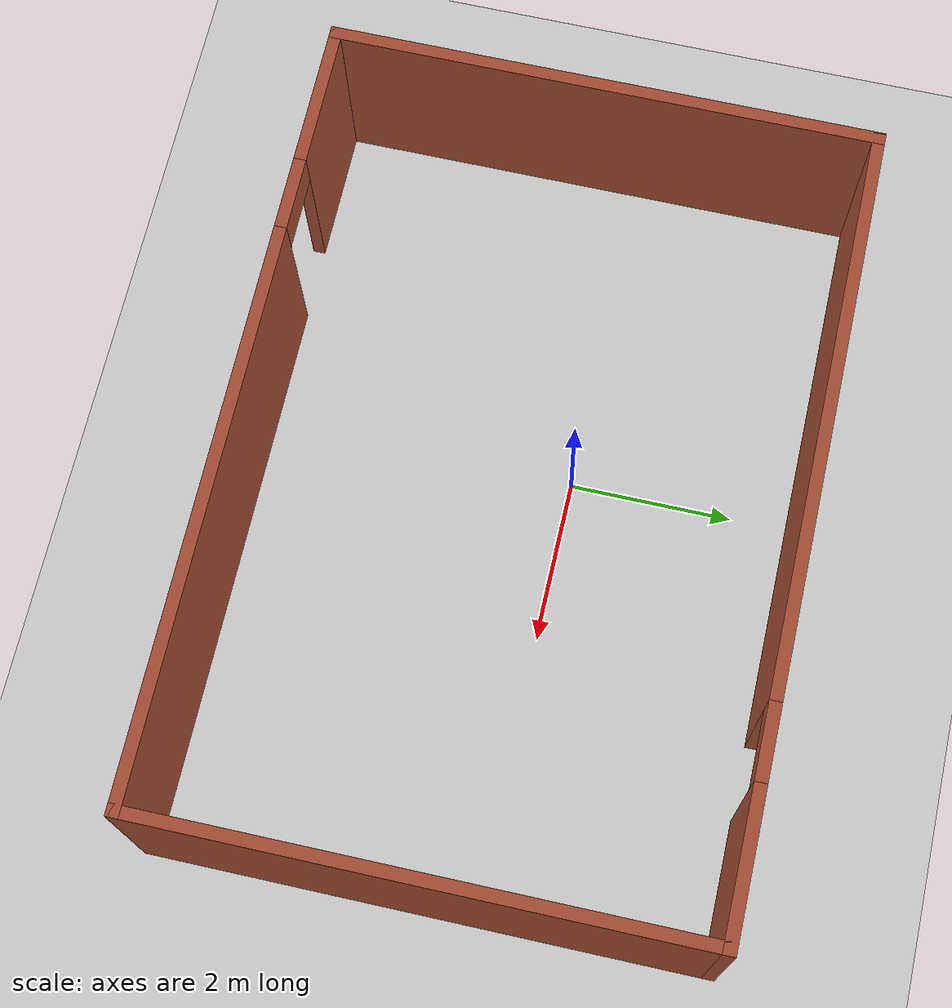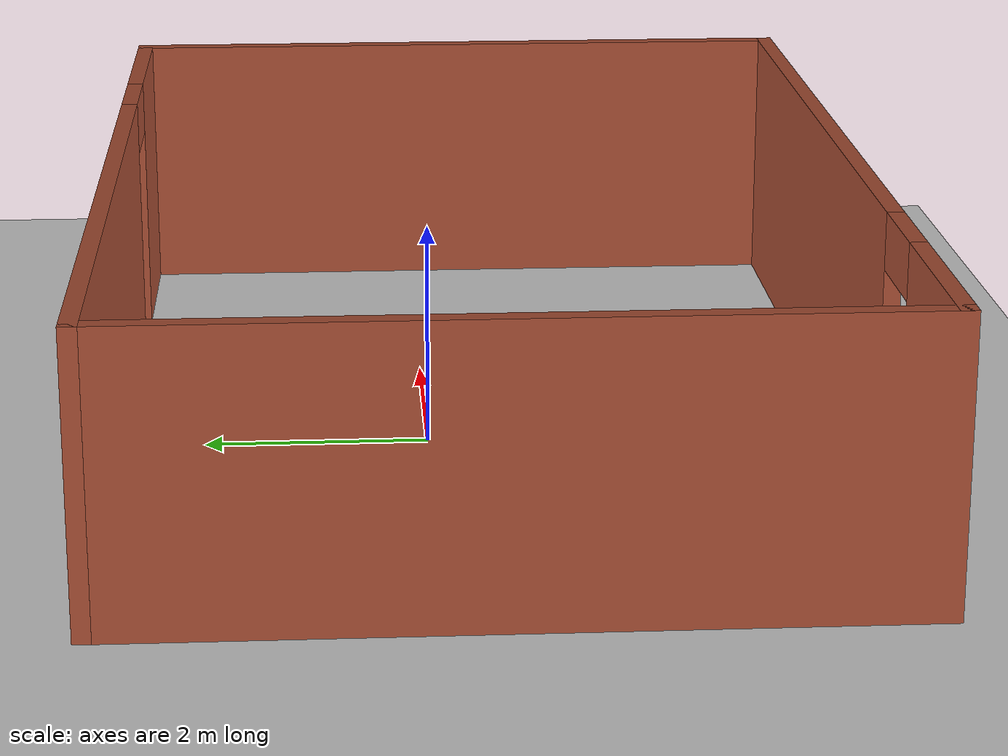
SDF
<sdf version="1.7">
 <world name="default">
  <light name="sun" type="directional">
   <pose>0 0 10 0 -0 0</pose>
   <diffuse>0.8 0.8 0.8 1</diffuse>
   <specular>0.2 0.2 0.2 1</specular>
   <attenuation>
    <range>1000</range>
    <constant>0.9</constant>
    <linear>0.01</linear>
    <quadratic>0.001</quadratic>
   </attenuation>
   <direction>-0.5 0.1 -0.9</direction>
   <spot><inner_angle>0</inner_angle><outer_angle>0</outer_angle><falloff>0</falloff></spot>
  </light>
  <model name="ground_plane">
   <static>1</static>
   <link name="link">
    <collision name="collision">
     <geometry><plane><normal>0 0 1</normal><size>100 100</size></plane></geometry>
     <surface>
      <contact><collide_bitmask>65535</collide_bitmask></contact>
      <friction><ode><mu>100</mu><mu2>50</mu2></ode></friction>
     </surface>
    </collision>
    <visual name="visual">
     <cast_shadows>0</cast_shadows>
     <geometry><plane><normal>0 0 1</normal><size>100 100</size></plane></geometry>
     <material>
      <script><uri>file://media/materials/scripts/gazebo.material</uri><name>Gazebo/Grey</name></script>
     </material>
    </visual>
   </link>
  </model>
  <gravity>0 0 -9.8</gravity>
  <magnetic_field>6e-06 2.3e-05 -4.2e-05</magnetic_field>
  <atmosphere type="adiabatic"/>
  <physics type="ode">
   <max_step_size>0.001</max_step_size>
   <real_time_factor>1</real_time_factor>
   <real_time_update_rate>1000</real_time_update_rate>
  </physics>
  <scene><ambient>0.4 0.4 0.4 1</ambient><background>0.7 0.7 0.7 1</background><shadows>1</shadows></scene>
  <audio><device>default</device></audio>
  <spherical_coordinates>
   <surface_model>EARTH_WGS84</surface_model>
   <latitude_deg>0</latitude_deg>
   <longitude_deg>0</longitude_deg>
   <elevation>0</elevation>
   <heading_deg>0</heading_deg>
  </spherical_coordinates>
  <model name="test">
   <pose>0.621782 -0.536375 0 0 -0 0</pose>
   <link name="Wall_4">
    <collision name="Wall_4_Collision">
     <geometry><box><size>6.75 0.15 2.5</size></box></geometry>
     <pose>0 0 1.25 0 -0 0</pose>
    </collision>
    <visual name="Wall_4_Visual">
     <pose>0 0 1.25 0 -0 0</pose>
     <geometry><box><size>6.75 0.15 2.5</size></box></geometry>
     <material>
      <script><uri>file://media/materials/scripts/gazebo.material</uri><name>Gazebo/Bricks</name></script>
      <ambient>1 1 1 1</ambient>
     </material>
     <meta><layer>0</layer></meta>
    </visual>
    <pose>-4.8 0 0 0 -0 -1.5708</pose>
   </link>
   <link name="Wall_5">
    <pose>0 -3.3 0 0 -0 0</pose>
    <visual name="Wall_5_Visual_0">
     <pose>-3.9657 0 1.25 0 -0 0</pose>
     <geometry><box><size>1.8186 0.15 2.5</size></box></geometry>
     <material>
      <script><uri>file://media/materials/scripts/gazebo.material</uri><name>Gazebo/Bricks</name></script>
      <ambient>1 1 1 1</ambient>
     </material>
     <meta><layer>0</layer></meta>
    </visual>
    <collision name="Wall_5_Collision_0">
     <geometry><box><size>1.8186 0.15 2.5</size></box></geometry>
     <pose>-3.9657 0 1.25 0 -0 0</pose>
    </collision>
    <visual name="Wall_5_Visual_1">
     <pose>1.3593 0 1.25 0 -0 0</pose>
     <geometry><box><size>7.0314 0.15 2.5</size></box></geometry>
     <material>
      <script><uri>file://media/materials/scripts/gazebo.material</uri><name>Gazebo/Bricks</name></script>
      <ambient>1 1 1 1</ambient>
     </material>
     <meta><layer>0</layer></meta>
    </visual>
    <collision name="Wall_5_Collision_1">
     <geometry><box><size>7.0314 0.15 2.5</size></box></geometry>
     <pose>1.3593 0 1.25 0 -0 0</pose>
    </collision>
    <visual name="Wall_5_Visual_2">
     <pose>-2.6064 0 2.25 0 -0 0</pose>
     <geometry><box><size>0.9 0.15 0.5</size></box></geometry>
     <material>
      <script><uri>file://media/materials/scripts/gazebo.material</uri><name>Gazebo/Bricks</name></script>
      <ambient>1 1 1 1</ambient>
     </material>
     <meta><layer>0</layer></meta>
    </visual>
    <collision name="Wall_5_Collision_2">
     <geometry><box><size>0.9 0.15 0.5</size></box></geometry>
     <pose>-2.6064 0 2.25 0 -0 0</pose>
    </collision>
   </link>
   <link name="Wall_6">
    <collision name="Wall_6_Collision">
     <geometry><box><size>6.75 0.15 2.5</size></box></geometry>
     <pose>0 0 1.25 0 -0 0</pose>
    </collision>
    <visual name="Wall_6_Visual">
     <pose>0 0 1.25 0 -0 0</pose>
     <geometry><box><size>6.75 0.15 2.5</size></box></geometry>
     <material>
      <script><uri>file://media/materials/scripts/gazebo.material</uri><name>Gazebo/Bricks</name></script>
      <ambient>1 1 1 1</ambient>
     </material>
     <meta><layer>0</layer></meta>
    </visual>
    <pose>4.8 0 0 0 -0 1.5708</pose>
   </link>
   <link name="Wall_7">
    <pose>0 3.3 0 0 -0 3.14159</pose>
    <visual name="Wall_7_Visual_0">
     <pose>-3.95417 0 1.25 0 -0 0</pose>
     <geometry><box><size>1.84166 0.15 2.5</size></box></geometry>
     <material>
      <script><uri>file://media/materials/scripts/gazebo.material</uri><name>Gazebo/Bricks</name></script>
      <ambient>1 1 1 1</ambient>
     </material>
     <meta><layer>0</layer></meta>
    </visual>
    <collision name="Wall_7_Collision_0">
     <geometry><box><size>1.84166 0.15 2.5</size></box></geometry>
     <pose>-3.95417 0 1.25 0 -0 0</pose>
    </collision>
    <visual name="Wall_7_Visual_1">
     <pose>1.37083 0 1.25 0 -0 0</pose>
     <geometry><box><size>7.00835 0.15 2.5</size></box></geometry>
     <material>
      <script><uri>file://media/materials/scripts/gazebo.material</uri><name>Gazebo/Bricks</name></script>
      <ambient>1 1 1 1</ambient>
     </material>
     <meta><layer>0</layer></meta>
    </visual>
    <collision name="Wall_7_Collision_1">
     <geometry><box><size>7.00835 0.15 2.5</size></box></geometry>
     <pose>1.37083 0 1.25 0 -0 0</pose>
    </collision>
    <visual name="Wall_7_Visual_2">
     <pose>-2.58335 0 2.25 0 -0 0</pose>
     <geometry><box><size>0.9 0.15 0.5</size></box></geometry>
     <material>
      <script><uri>file://media/materials/scripts/gazebo.material</uri><name>Gazebo/Bricks</name></script>
      <ambient>1 1 1 1</ambient>
     </material>
     <meta><layer>0</layer></meta>
    </visual>
    <collision name="Wall_7_Collision_2">
     <geometry><box><size>0.9 0.15 0.5</size></box></geometry>
     <pose>-2.58335 0 2.25 0 -0 0</pose>
    </collision>
   </link>
   <static>1</static>
  </model>
 </world>
</sdf>
